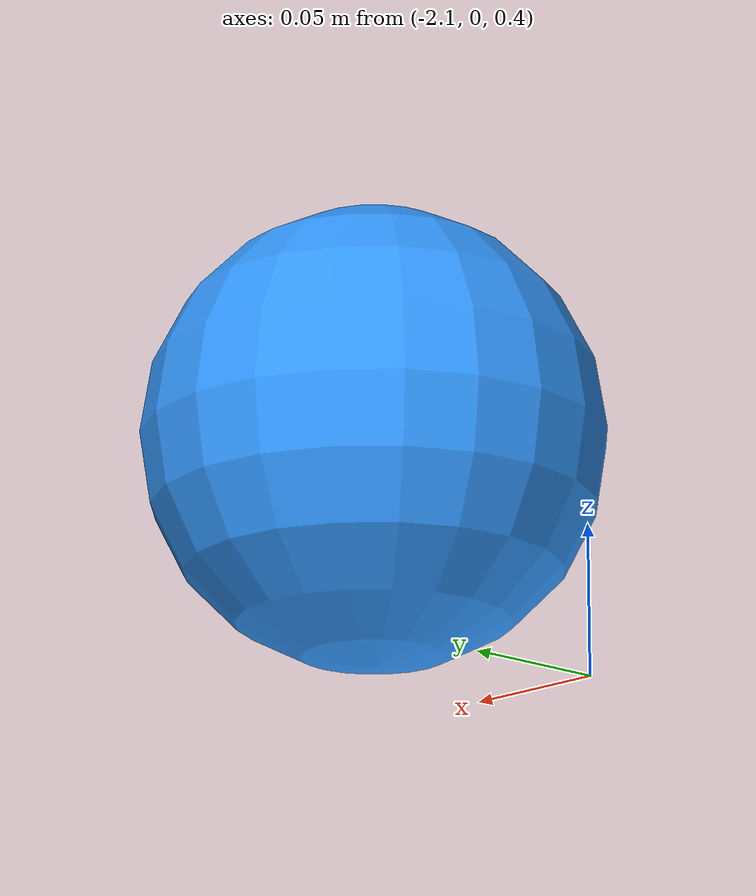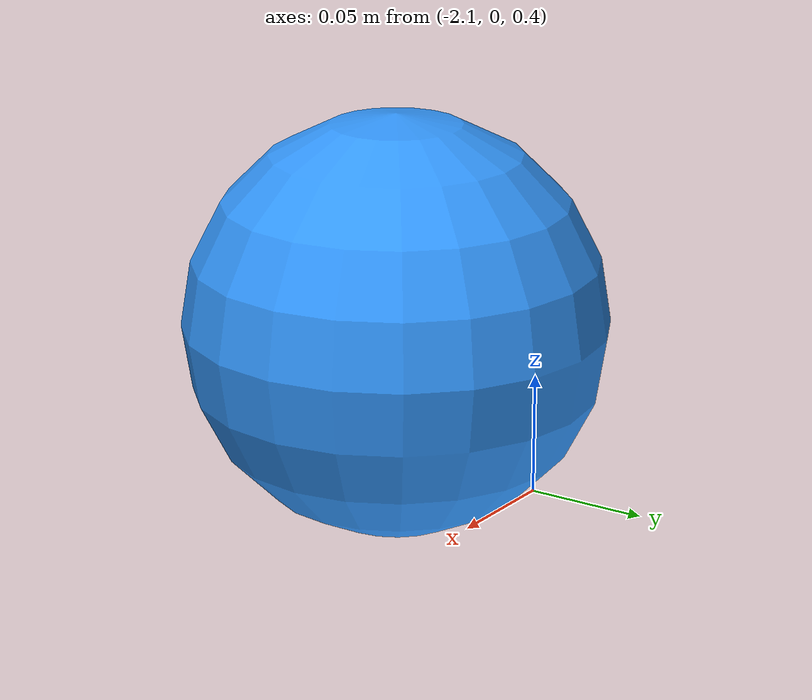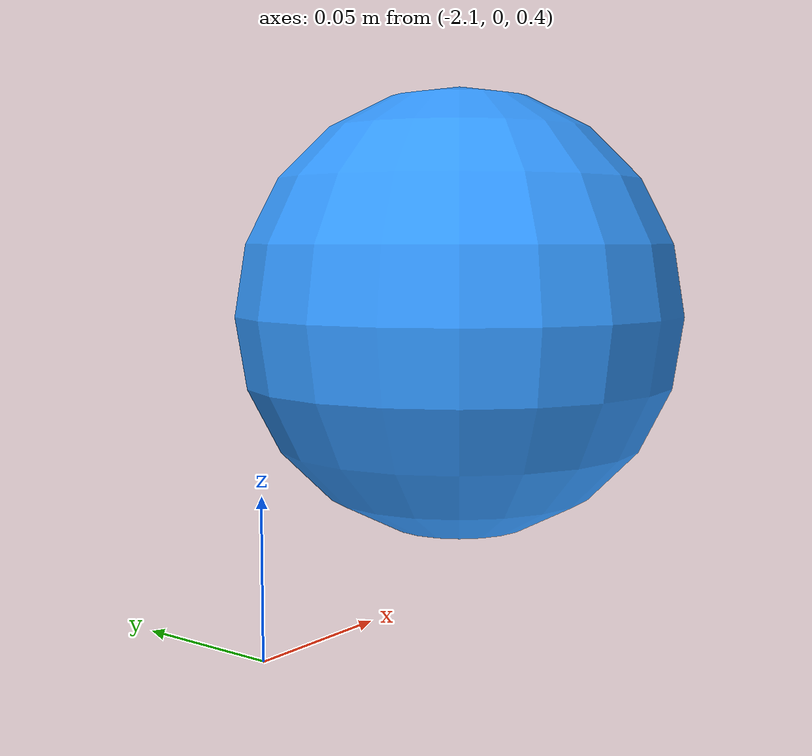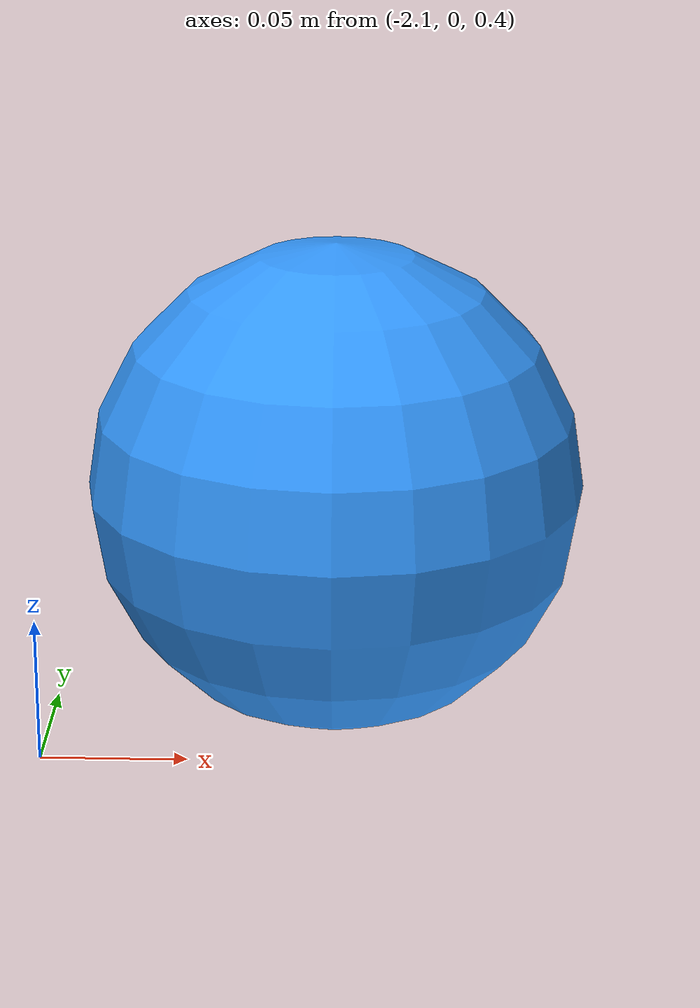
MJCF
<mujoco model="disessa_ball">
  <option timestep="0.002" gravity="0 0 0" integrator="RK4"/>

  <asset>
    <material name="ground" rgba="0.12 0.12 0.18 1" specular="0" shininess="0"/>
  </asset>

  <worldbody>
    <light pos="0 0 5" dir="0 0 -1" diffuse="0.8 0.8 0.8" castshadow="false"/>
    <light pos="0 -3 3" dir="0 0.5 -0.5" diffuse="0.4 0.4 0.5"/>

    <!-- Ground reference plane (visual only) -->
    <geom type="plane" size="5 5 0.01" material="ground" contype="0" conaffinity="0"/>

    <!-- The ball -->
    <body name="ball" pos="-2 0 0.5">
      <joint type="free" damping="0"/>
      <geom type="sphere" size="0.08" mass="1.0" rgba="0.2 0.6 1.0 1"
            contype="0" conaffinity="0"/>
      <site name="force_point" pos="0 0 0" size="0.01"/>
    </body>

    <!-- Cameras -->
    <camera name="side" pos="0 -4 1.5" xyaxes="1 0 0 0 0.3 1"/>
    <camera name="top" pos="0 0 5" xyaxes="1 0 0 0 1 0"/>
  </worldbody>

  <actuator>
    <motor name="upward_force" site="force_point" gear="0 0 1 0 0 0"
           ctrllimited="true" ctrlrange="0 50"/>
  </actuator>

  <sensor>
    <framepos name="ball_pos" objtype="body" objname="ball"/>
    <framelinvel name="ball_vel" objtype="body" objname="ball"/>
  </sensor>
</mujoco>
